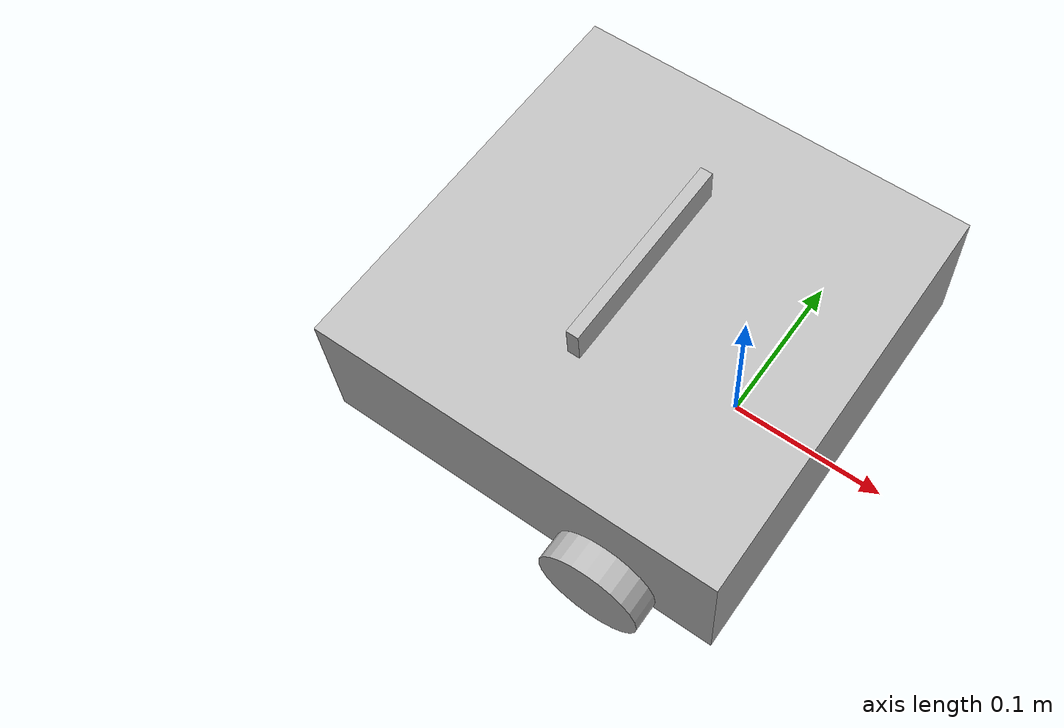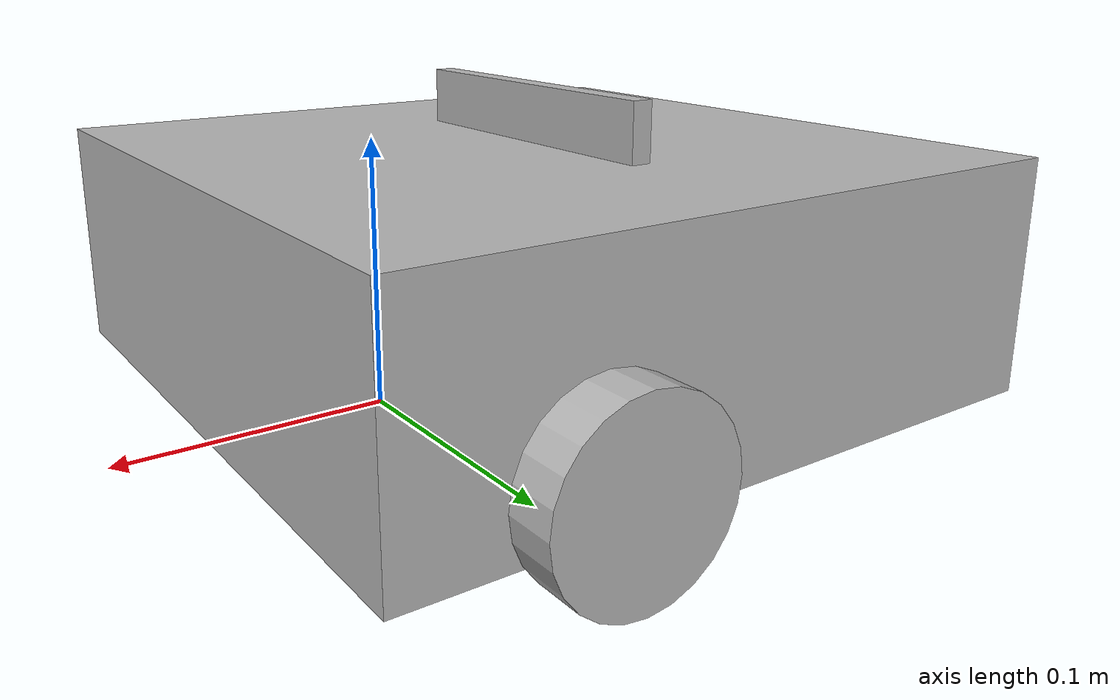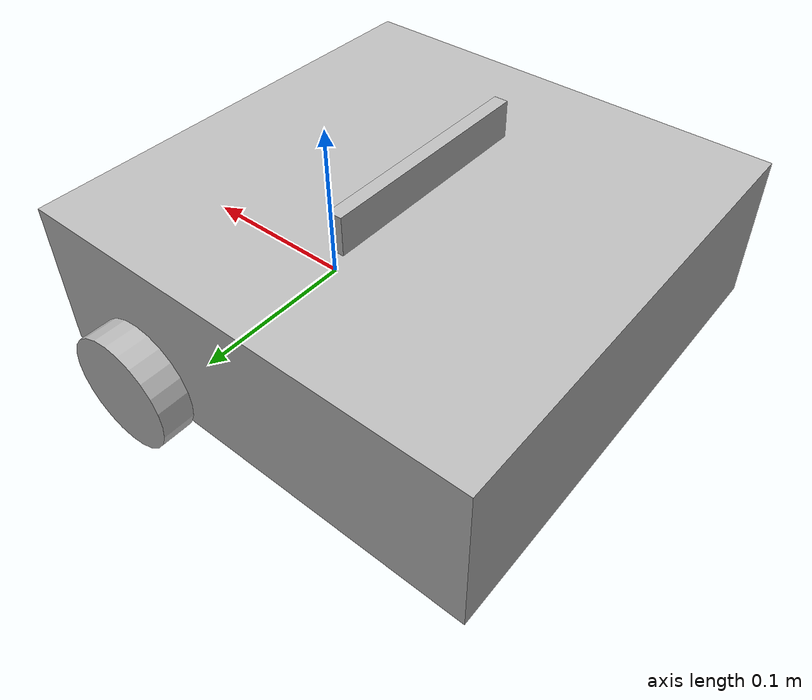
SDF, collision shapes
<?xml version="1.0" ?>
<sdf version="1.5">
  <model name="turtlebot3_waffle_pi">

    <link name="base">

      <inertial>
        <pose>-0.064 0 0.048 0 0 0</pose>
        <inertia>
          <ixx>0.001</ixx>
          <ixy>0.000</ixy>
          <ixz>0.000</ixz>
          <iyy>0.001</iyy>
          <iyz>0.000</iyz>
          <izz>0.001</izz>
        </inertia>
        <mass>1.0</mass>
      </inertial>

      <collision name="base_collision">
        <pose>-0.064 0 0.048 0 0 0</pose>
        <geometry>
          <box>
            <size>0.265 0.265 0.089</size>
          </box>
        </geometry>
      </collision>

      <visual name="base_visual">
        <pose>-0.064 0 0 0 0 0</pose>
        <geometry>
          <mesh>
            <uri>model://turtlebot3_waffle_pi/meshes/waffle_pi_base.dae</uri>
            <scale>0.001 0.001 0.001</scale>
          </mesh>
        </geometry>
      </visual>

      <collision name="right_caster_collision">
        <pose>-0.177 -0.064 -0.004 0 0 0</pose>
        <geometry>
          <sphere>
            <radius>0.005000</radius>
          </sphere>
        </geometry>
        <surface>
          <friction>
            <ode>
              <mu>100000.0</mu>
              <mu2>100000.0</mu2>
              <fdir1>0 0 0</fdir1>
              <slip1>0</slip1>
              <slip2>0</slip2>
            </ode>
          </friction>
        </surface>
      </collision>

      <collision name="left_caster_collision">
        <pose>-0.177 0.064 -0.004 0 0 0</pose>
        <geometry>
          <sphere>
            <radius>0.005000</radius>
          </sphere>
        </geometry>
        <surface>
          <friction>
            <ode>
              <mu>100000.0</mu>
              <mu2>100000.0</mu2>
              <fdir1>0 0 0</fdir1>
              <slip1>0</slip1>
              <slip2>0</slip2>
            </ode>
          </friction>
        </surface>
      </collision>
    </link>

    <link name="image">
      <inertial>
        <pose>-0.069 0 0.104 0 0 0</pose>
        <inertia>
          <ixx>0.001</ixx>
          <ixy>0.000</ixy>
          <ixz>0.000</ixz>
          <iyy>0.001</iyy>
          <iyz>0.000</iyz>
          <izz>0.001</izz>
        </inertia>
        <mass>0.035</mass>
      </inertial>

      <collision name="image_collision">
        <pose>-0.069 0 0.104 0 0 0</pose>
        <geometry>
          <box>
            <size>0.008 0.130 0.022</size>
          </box>
        </geometry>
      </collision>

      <sensor name="raspberry_pi_cam" type="camera">
        <pose>0.076 0 0.094 0 0 0</pose>
        <always_on>1</always_on>
        <visualize>0</visualize>
        <update_rate>30</update_rate>
        <camera>
            <horizontal_fov>1.085595</horizontal_fov>
            <image>
                <width>640</width>
                <height>480</height>
                <format>R8G8B8</format>
            </image>
            <depth_camera></depth_camera>
            <clip>
                <near>0.02</near>
                <far>300</far>
            </clip>
        </camera>
      </sensor>
    </link>

    <link name="left_wheel">

      <inertial>
        <pose>0.0 0.144 0.023 -1.57 0 0</pose>
        <inertia>
          <ixx>0.001</ixx>
          <ixy>0.000</ixy>
          <ixz>0.000</ixz>
          <iyy>0.001</iyy>
          <iyz>0.000</iyz>
          <izz>0.001</izz>
        </inertia>
        <mass>0.1</mass>
      </inertial>

      <collision name="left_wheel_collision">
        <pose>0.0 0.144 0.023 -1.57 0 0</pose>
        <geometry>
          <cylinder>
            <radius>0.033</radius>
            <length>0.018</length>
          </cylinder>
        </geometry>
          <surface>
            <friction>
              <ode>
                <mu>100000.0</mu>
                <mu2>100000.0</mu2>
                <fdir1>0 0 0</fdir1>
                <slip1>0.0</slip1>
                <slip2>0.0</slip2>
              </ode>
          </friction>
        </surface>
      </collision>

      <visual name="left_wheel_visual">
        <pose>0.0 0.144 0.023 0 0 0</pose>
        <geometry>
          <mesh>
            <uri>model://turtlebot3_waffle_pi/meshes/left_tire.dae</uri>
            <scale>0.001 0.001 0.001</scale>
          </mesh>
        </geometry>
      </visual>
    </link>

    <link name="right_wheel">

      <inertial>
        <pose>0.0 -0.144 0.023 -1.57 0 0</pose>
        <inertia>
          <ixx>0.001</ixx>
          <ixy>0.000</ixy>
          <ixz>0.000</ixz>
          <iyy>0.001</iyy>
          <iyz>0.000</iyz>
          <izz>0.001</izz>
        </inertia>
        <mass>0.1</mass>
      </inertial>

      <collision name="right_wheel_collision">
        <pose>0.0 -0.144 0.023 -1.57 0 0</pose>
        <geometry>
          <cylinder>
            <radius>0.033</radius>
            <length>0.018</length>
          </cylinder>
        </geometry>
          <surface>
            <friction>
              <ode>
                <mu>100000.0</mu>
                <mu2>100000.0</mu2>
                <fdir1>0 0 0</fdir1>
                <slip1>0.0</slip1>
                <slip2>0.0</slip2>
              </ode>
          </friction>
        </surface>
      </collision>

      <visual name="right_wheel_visual">
        <pose>0.0 -0.144 0.023 0 0 0</pose>
        <geometry>
          <mesh>
            <uri>model://turtlebot3_waffle_pi/meshes/right_tire.dae</uri>
            <scale>0.001 0.001 0.001</scale>
          </mesh>
        </geometry>
      </visual>
    </link>

    <joint name="left_wheel_joint" type="revolute">
      <parent>base</parent>
      <child>left_wheel</child>
      <pose>0.0 0.144 0.023 -1.57 0 0</pose>
      <axis>
        <xyz>0 1 0</xyz>
      </axis>
    </joint>

    <joint name="right_wheel_joint" type="revolute">
      <parent>base</parent>
      <child>right_wheel</child>
      <pose>0.0 -0.144 0.023 -1.57 0 0</pose>
      <axis>
        <xyz>0 1 0</xyz>
      </axis>
    </joint>

    <joint name="lidar_joint" type="fixed">
      <parent>base</parent>
      <child>lidar</child>
      <pose>-0.064 0 0.121 0 0 0</pose>
      <axis>
        <xyz>0 0 1</xyz>
        <use_parent_model_frame>true</use_parent_model_frame>
      </axis>
    </joint>

    <joint name="image_joint" type="fixed">
      <parent>base</parent>
      <child>image</child>
      <pose>0.064 -0.065 0.094 0 0 0</pose>
      <axis>
        <xyz>0 0 1</xyz>
        <use_parent_model_frame>true</use_parent_model_frame>
      </axis>
    </joint>

  </model>
</sdf>
